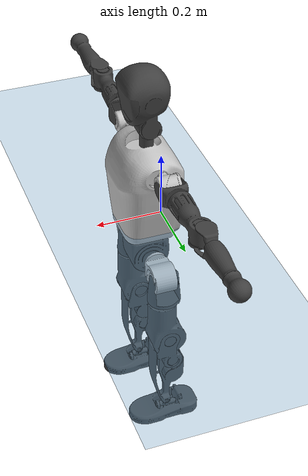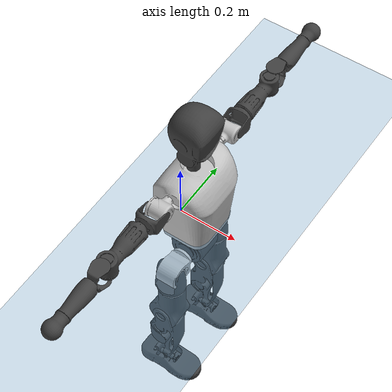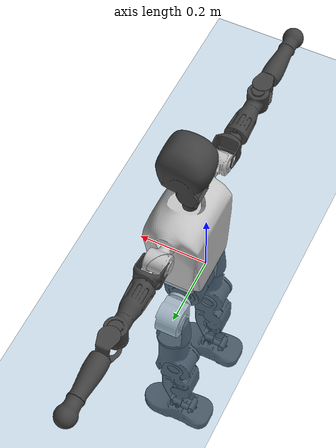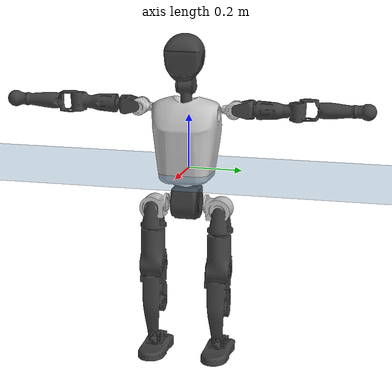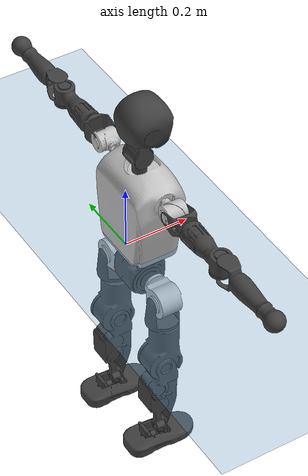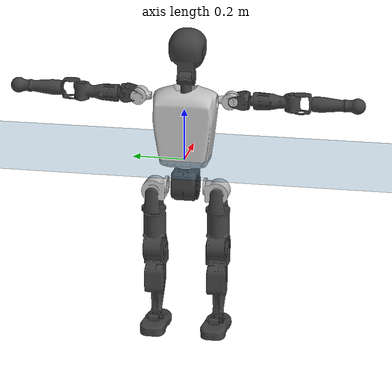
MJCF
<mujoco model="T1">
  <compiler angle="radian" assetdir="assets" balanceinertia="true" inertiafromgeom="false"/>

  <option timestep="0.005" density="1.2" viscosity="2e-05"/>

  <size nkey="1"/>

  <visual>
    <quality shadowsize="8192"/>
    <map shadowclip="0.5"/>
  </visual>

  <default>
    <default class="/">
      <joint armature="0.01" damping="0.01" frictionloss="0.1"/>
      <geom contype="0" conaffinity="0" group="1" solref="-1000 -80"/>
      <site size="0.01 0.005 0.005" group="5"/>
      <general forcelimited="true" biastype="affine" gainprm="25" biasprm="0 -25 -0.6"/>
      <default class="t1">
        <geom rgba="0.25 0.25 0.25 1"/>
        <default class="visual">
          <geom type="mesh" group="2"/>
        </default>
        <default class="collision">
          <geom group="3"/>
        </default>
        <default class="foot">
          <geom size="0.1115 0.05 0.015" type="box" condim="6" group="4" priority="1" solimp="0.015 1 0.015"/>
        </default>
        <default class="reward_collision_sphere">
          <geom group="5" rgba="1 0 0 1"/>
        </default>
      </default>
    </default>
  </default>

  <asset>
    <texture type="skybox" colorspace="auto" name="//unnamed_texture_0" builtin="gradient" rgb1="0.95 0.95 0.95" rgb2="0.95 0.95 0.95" width="100" height="600"/>
    <texture type="2d" colorspace="auto" name="texplane" builtin="checker" rgb1="0.345 0.575 0.748" rgb2="0.345 0.575 0.748" markrgb="1 1 1" width="512" height="512"/>
    <material name="MatPlane" class="/" texture="texplane" texuniform="true" texrepeat="2 2" specular="0.9"/>
    <mesh name="Trunk" class="/" file="Trunk.stl"/>
    <mesh name="H1" class="/" file="H1.stl"/>
    <mesh name="H2" class="/" file="H2.stl"/>
    <mesh name="AL1" class="/" file="AL1.stl"/>
    <mesh name="AL2" class="/" file="AL2.stl"/>
    <mesh name="AL3" class="/" file="AL3.stl"/>
    <mesh name="left_hand_link" class="/" file="left_hand_link.stl"/>
    <mesh name="AR1" class="/" file="AR1.stl"/>
    <mesh name="AR2" class="/" file="AR2.stl"/>
    <mesh name="AR3" class="/" file="AR3.stl"/>
    <mesh name="right_hand_link" class="/" file="right_hand_link.stl"/>
    <mesh name="Waist" class="/" file="Waist.stl"/>
    <mesh name="Hip_Pitch_Left" class="/" file="Hip_Pitch_Left.stl"/>
    <mesh name="Hip_Roll_Left" class="/" file="Hip_Roll_Left.stl"/>
    <mesh name="Hip_Yaw_Left" class="/" file="Hip_Yaw_Left.stl"/>
    <mesh name="Shank_Left" class="/" file="Shank_Left.stl"/>
    <mesh name="Ankle_Cross_Left" class="/" file="Ankle_Cross_Left.stl"/>
    <mesh name="left_foot_link" class="/" file="left_foot_link.stl"/>
    <mesh name="Hip_Pitch_Right" class="/" file="Hip_Pitch_Right.stl"/>
    <mesh name="Hip_Roll_Right" class="/" file="Hip_Roll_Right.stl"/>
    <mesh name="Hip_Yaw_Right" class="/" file="Hip_Yaw_Right.stl"/>
    <mesh name="Shank_Right" class="/" file="Shank_Right.stl"/>
    <mesh name="Ankle_Cross_Right" class="/" file="Ankle_Cross_Right.stl"/>
    <mesh name="right_foot_link" class="/" file="right_foot_link.stl"/>
  </asset>

  <worldbody>
    <geom name="floor" class="/" size="100 100 0.125" type="plane" group="0" material="MatPlane"/>
    <light name="toplight_shadow" class="/" pos="0 0 5" dir="0.0990148 0.0990148 -0.990148" type="directional" ambient="0.04 0.04 0.04" diffuse="0.55 0.55 0.55" specular="0.12 0.12 0.12"/>
    <light name="toplight_fill" class="/" pos="0 0 5" dir="0.0990148 0.0990148 -0.990148" type="directional" castshadow="false" ambient="0.04 0.04 0.04" diffuse="0.3 0.3 0.3" specular="0.08 0.08 0.08"/>
    <body name="trunk" childclass="t1" pos="0.000604886 0.00480397 -0.00184958" quat="0.999999 1.13417e-05 -0.00115415 -0.000102263">
      <inertial pos="0.0425045 -0.000826017 0.110683" quat="0.999905 0.00330391 -0.0104304 -0.0084408" mass="13.4757" diaginertia="0.0273384 0.191747 0.0760285"/>
      <joint name="//unnamed_joint_0" type="free" armature="0" damping="0" frictionloss="0"/>
      <geom name="//unnamed_geom_1" class="visual" rgba="0.76 0.76 0.76 1" mesh="Trunk"/>
      <geom name="//unnamed_geom_2" class="collision" size="0.0769179 0.102557 0.153836" pos="0.0473789 0 0.127414" type="box"/>
      <geom name="//unnamed_geom_3" class="reward_collision_sphere" size="0.117941" pos="0.0473789 0 0.106179"/>
      <geom name="//unnamed_geom_4" class="reward_collision_sphere" size="0.0153836" pos="0.0473789 0.104149 0"/>
      <geom name="//unnamed_geom_5" class="reward_collision_sphere" size="0.0153836" pos="0.0473789 -0.104149 0"/>
      <geom name="//unnamed_geom_6" class="reward_collision_sphere" size="0.0153836" pos="0.0473789 0.131105 0.191122"/>
      <geom name="//unnamed_geom_7" class="reward_collision_sphere" size="0.0153836" pos="0.0473789 -0.131105 0.191122"/>
      <site name="imu" pos="0.0143051 0.0310523 0.00916105" size="0.0102557"/>
      <camera name="track" pos="0 -2.45056 0" quat="0.707107 0.707107 0 0" mode="trackcom"/>
      <camera name="ego_camera" pos="0.0963371 0 0.44595" quat="-0.5 -0.5 0.5 0.5"/>
      <body name="H1" pos="0.0458864 -0.00290383 0.254775" quat="1 3.56356e-05 0.000325246 0.000827913">
        <inertial pos="-0.00243232 -0.000596718 0.0584866" quat="0.75451 -0.0502037 0.0183268 0.654109" mass="0.474348" diaginertia="7.71843e-05 0.000599893 0.000211861"/>
        <joint name="AAHead_yaw" pos="0 0 0" axis="0.00149929 -0.0314624 0.999504" range="-1.50885 1.61325" armature="0.0090454" damping="0.00926237" frictionloss="0.121191"/>
        <geom name="//unnamed_geom_8" class="visual" mesh="H1"/>
        <body name="H2" pos="-0.00567939 -0.00233155 0.0630791" quat="0.999999 0.000506867 7.0957e-05 -0.00103577">
          <inertial pos="0.00702911 0.00886081 0.104445" quat="0.987596 0.106126 -0.0779011 -0.0855766" mass="0.717267" diaginertia="0.000676155 0.00620817 0.00242155"/>
          <joint name="Head_pitch" pos="0 0 0" axis="0.0200802 -0.999739 0.0108713" stiffness="0.00251187" range="-1.26213 0.321364" armature="0.0111737" damping="0.000946686" frictionloss="0.103717"/>
          <geom name="//unnamed_geom_9" class="visual" mesh="H2"/>
          <geom name="//unnamed_geom_10" class="collision" size="0.0820457" pos="0.00789649 0 0.116797"/>
          <geom name="//unnamed_geom_11" class="reward_collision_sphere" size="0.0923015" pos="0.015793 0 0.106179"/>
        </body>
      </body>
      <body name="AL1" pos="0.0485558 0.132438 0.234639" quat="1 -0.000159161 0.000596526 0.000410026">
        <inertial pos="0.00128451 0.0556448 0.00745681" quat="0.532064 0.49556 -0.491077 0.479762" mass="0.50747" diaginertia="0.000364195 0.00307927 0.000341836"/>
        <joint name="Left_Shoulder_Pitch" pos="0 0 0" axis="0.00566281 0.999591 -0.0280284" range="-3.29484 1.2339" armature="0.00967349" damping="0" frictionloss="0.112942"/>
        <geom name="//unnamed_geom_12" class="visual" rgba="0.76 0.76 0.76 1" mesh="AL1"/>
        <body name="AL2" pos="0.00204562 0.0620083 0.00515457" quat="0.999989 0.00325427 -0.00272525 0.00184162">
          <inertial pos="0.0066091 0.0551011 -0.000132534" quat="0.49041 0.509794 -0.487316 0.511988" mass="0.17773" diaginertia="0.000121357 0.000980609 0.000244653"/>
          <joint name="Left_Shoulder_Roll" pos="0 0 0" axis="-0.999032 0.0108184 0.0426325" stiffness="0.0383167" range="-1.70587 1.72821" armature="0.010576" damping="0.0476041" frictionloss="0.0700966"/>
          <geom name="//unnamed_geom_13" class="visual" mesh="AL2"/>
          <body name="AL3" pos="-0.00294499 0.0658705 -0.00206931" quat="0.999994 0.00102174 -0.000488105 -0.00331798">
            <inertial pos="-0.00123574 0.109909 -0.000318703" quat="0.708939 0.705196 0.00137993 0.0101146" mass="0.998398" diaginertia="0.00410321 0.0335511 0.000941624"/>
            <joint name="Left_Elbow_Pitch" pos="0 0 0" axis="0.0100265 -0.999704 0.0221503" stiffness="0.0242315" range="-2.44472 2.42402" armature="0.00650529" damping="0.037866" frictionloss="0.0807998"/>
            <geom name="//unnamed_geom_14" class="visual" mesh="AL3"/>
            <geom name="//unnamed_geom_15" class="collision" size="0.0307672 0.0769179" pos="0 0.061264 0" quat="0.707105 0.707108 0 0" type="cylinder"/>
            <geom name="//unnamed_geom_16" class="reward_collision_sphere" size="0.0369206"/>
            <body name="left_hand_link" pos="-0.00121821 0.180911 0.0073062" quat="0.999999 0.000989388 -0.00122955 -0.000493729">
              <inertial pos="5.48667e-05 0.135532 0.0052863" quat="0.712248 0.701879 0.00793777 0.00245404" mass="0.342409" diaginertia="0.00245499 0.0218099 0.000293733"/>
              <joint name="Left_Elbow_Yaw" pos="0 0 0" axis="-0.00497004 -0.0114688 0.999922" range="-2.46071 0.0316969" armature="0.00980555" damping="0.0196833" frictionloss="0.0906638"/>
              <geom name="//unnamed_geom_17" class="visual" mesh="left_hand_link"/>
              <geom name="//unnamed_geom_18" class="collision" size="0.0307672 0.0897375" pos="0 0.159286 0" quat="0.707105 0.707108 0 0" type="cylinder"/>
              <geom name="//unnamed_geom_19" class="reward_collision_sphere" size="0.0512786"/>
              <geom name="//unnamed_geom_20" class="reward_collision_sphere" size="0.035895" pos="0 0.134781 0"/>
              <geom name="//unnamed_geom_21" class="reward_collision_sphere" size="0.035895" pos="0 0.263435 0"/>
            </body>
          </body>
        </body>
      </body>
      <body name="AR1" pos="0.0467467 -0.129776 0.232993" quat="1 -0.000318317 0.000478126 -0.000503655">
        <inertial pos="0.00116796 -0.048762 -0.00667956" quat="0.500894 0.491124 -0.505315 0.502553" mass="0.570671" diaginertia="0.000451209 0.00354296 0.000380713"/>
        <joint name="Right_Shoulder_Pitch" pos="0 0 0" axis="0.00380539 -0.99999 0.00219497" stiffness="0.00715235" range="-1.23897 3.30493" armature="0.0115645" damping="0.0110544" frictionloss="0.110012"/>
        <geom name="//unnamed_geom_22" class="visual" rgba="0.76 0.76 0.76 1" mesh="AR1"/>
        <body name="AR2" pos="-0.00275149 -0.0628159 0.00296366" quat="0.999999 -0.000742148 0.000621346 -0.000348505">
          <inertial pos="0.00448508 -0.0463143 0.00742571" quat="0.516175 0.489043 -0.50306 0.491254" mass="0.170568" diaginertia="0.000129641 0.00105013 0.000257671"/>
          <joint name="Right_Shoulder_Roll" pos="0 0 0" axis="-0.999784 -0.0153764 0.0139915" range="-1.74928 1.44915" armature="0.0100466" damping="0.0342005" frictionloss="0.0998157"/>
          <geom name="//unnamed_geom_23" class="visual" mesh="AR2"/>
          <body name="AR3" pos="-0.00405175 -0.0758089 0.00259432" quat="0.999999 -4.75539e-05 0.000822056 -0.000788156">
            <inertial pos="-6.94134e-05 -0.102596 -0.00168657" quat="0.707413 0.706798 0.00116532 0.00155173" mass="1.13102" diaginertia="0.00394571 0.0337328 0.000817891"/>
            <joint name="Right_Elbow_Pitch" pos="0 0 0" axis="-0.000354946 1 -8.12658e-05" stiffness="0.0133147" range="-2.26532 2.2769" armature="0.00671769" damping="0.00559958" frictionloss="0.136083"/>
            <geom name="//unnamed_geom_24" class="visual" mesh="AR3"/>
            <geom name="//unnamed_geom_25" class="collision" size="0.0307672 0.0769179" pos="0 -0.061264 0" quat="0.707105 0.707108 0 0" type="cylinder"/>
            <geom name="//unnamed_geom_26" class="reward_collision_sphere" size="0.0369206"/>
            <body name="right_hand_link" pos="0.000643798 -0.177409 -0.00178883" quat="0.999999 -0.00116584 0.000221947 -0.000221031">
              <inertial pos="-0.000755782 -0.136327 0.00884964" quat="0.729696 0.683499 -0.0137015 0.013574" mass="0.310741" diaginertia="0.00269491 0.0224785 0.000279685"/>
              <joint name="Right_Elbow_Yaw" pos="0 0 0" axis="0.012062 -6.17131e-05 0.999927" stiffness="0.0309967" range="0.133876 2.28358" armature="0.00967813" damping="0" frictionloss="0.106714"/>
              <geom name="//unnamed_geom_27" class="visual" mesh="right_hand_link"/>
              <geom name="//unnamed_geom_28" class="collision" size="0.0307672 0.0897375" pos="0 -0.159286 0" quat="0.707105 0.707108 0 0" type="cylinder"/>
              <geom name="//unnamed_geom_29" class="reward_collision_sphere" size="0.0512786"/>
              <geom name="//unnamed_geom_30" class="reward_collision_sphere" size="0.035895" pos="0 -0.134781 0"/>
              <geom name="//unnamed_geom_31" class="reward_collision_sphere" size="0.035895" pos="0 -0.263435 0"/>
            </body>
          </body>
        </body>
      </body>
      <body name="Waist" pos="0.0478668 -0.000619158 -0.120506" quat="1 -0.000180146 0.000115741 1.4613e-05">
        <inertial pos="0.00456781 0.00103707 0.00611818" quat="0.983797 0.00735411 -0.179108 -0.00297429" mass="2.86977" diaginertia="0.00174004 0.0141749 0.00635507"/>
        <joint name="Waist" pos="0 0 0" axis="0.0278749 -0.0106558 0.999555" stiffness="0.0447122" range="-1.58183 1.52619" armature="0.0100561" damping="0" frictionloss="0.130308"/>
        <geom name="//unnamed_geom_32" class="visual" mesh="Waist"/>
        <body name="Hip_Pitch_Left" pos="-0.00528823 0.123578 0.000196554" quat="1 -3.99597e-05 -1.13135e-05 8.51511e-05">
          <inertial pos="-0.00695288 -0.0102693 -0.0131269" quat="0.969709 0.239615 0.0430994 0.0198071" mass="1.06103" diaginertia="0.000571973 0.0041107 0.00169363"/>
          <joint name="Left_Hip_Pitch" pos="0 0 0" axis="0.00453793 0.99999 -0.00052567" range="-1.80498 1.4409" armature="0.00906012" damping="0.0319555" frictionloss="0.0933868"/>
          <geom name="//unnamed_geom_33" class="visual" rgba="0.76 0.76 0.76 1" mesh="Hip_Pitch_Left"/>
          <body name="Hip_Roll_Left" pos="-0.00463256 0.00138434 -0.0276769" quat="1 5.5355e-05 -0.000426398 -6.88087e-05">
            <inertial pos="0.00407472 -0.00499511 -0.0584137" quat="0.708652 0.00936749 0.00431016 0.705483" mass="0.465688" diaginertia="0.000537862 0.00493614 0.000770285"/>
            <joint name="Left_Hip_Roll" pos="0 0 0" axis="-0.999992 0.00257385 -0.00290657" range="-1.5966 0.18021" armature="0.0112966" damping="0.015355" frictionloss="0.121567"/>
            <geom name="//unnamed_geom_34" class="visual" mesh="Hip_Roll_Left"/>
            <geom name="//unnamed_geom_35" class="reward_collision_sphere" size="0.0564064"/>
            <body name="Hip_Yaw_Left" pos="0.000672405 -0.00436632 -0.0912967" quat="1 0.000503119 -0.000743227 -0.000338729">
              <inertial pos="-0.00610069 -0.0012209 -0.0968208" quat="0.672897 -0.0519018 -0.0326834 0.737189" mass="2.52076" diaginertia="0.00811473 0.0728107 0.00356805"/>
              <joint name="Left_Hip_Yaw" pos="0 0 0" axis="-0.0263946 -0.0206196 -0.999439" range="-1.03927 1.09414" armature="0.00914417" damping="5.64699e-06" frictionloss="0.109476"/>
              <geom name="//unnamed_geom_36" class="visual" mesh="Hip_Yaw_Left"/>
              <geom name="//unnamed_geom_37" class="collision" size="0.0512786 0.0820457" type="cylinder"/>
              <body name="Shank_Left" pos="-0.0151746 -0.00624336 -0.13659" quat="0.999999 0.00119788 0.000824189 9.36476e-05">
                <inertial pos="-0.00306296 0.00812833 -0.131771" quat="0.997985 0.00286204 -0.0144539 0.0617139" mass="1.81865" diaginertia="0.00929444 0.095305 0.0021945"/>
                <joint name="Left_Knee_Pitch" pos="0 0 0" axis="-0.00133191 0.999951 0.00981337" range="-0.0370325 2.32521" armature="0.0104768" damping="0.000197107" frictionloss="0.0553679"/>
                <geom name="//unnamed_geom_38" class="visual" mesh="Shank_Left"/>
                <geom name="//unnamed_geom_39" class="collision" size="0.0512786 0.0769179" pos="0 0 -0.127414" type="cylinder"/>
                <geom name="//unnamed_geom_40" class="reward_collision_sphere" size="0.0666622"/>
                <body name="Ankle_Cross_Left" pos="0.000223032 0.00159515 -0.294347" quat="1 5.27788e-05 8.25324e-05 -0.000347117">
                  <inertial pos="-0.00464187 -0.0017657 -0.0108102" quat="0.438679 0.549813 0.549807 0.450531" mass="0.0913027" diaginertia="9.32589e-06 8.66721e-05 1.65628e-05"/>
                  <joint name="Left_Ankle_Pitch" pos="0 0 0" axis="-0.021319 0.999201 -0.0337921" stiffness="0.0373413" range="-0.86983 0.324862" armature="0.0103341" damping="0.00375516" frictionloss="0.109182"/>
                  <geom name="//unnamed_geom_41" class="visual" mesh="Ankle_Cross_Left"/>
                  <body name="left_foot_link" pos="-0.00315558 -0.00198435 -0.0130736" quat="0.999992 -0.00161981 0.00262323 0.00256078">
                    <inertial pos="-0.00708559 0.00155755 -0.00917838" quat="0.00606704 0.626279 -0.0230244 0.779236" mass="0.708175" diaginertia="0.000818917 0.00647597 0.00306793"/>
                    <joint name="Left_Ankle_Roll" pos="0 0 0" axis="-0.999944 -0.00783315 -0.00709537" range="-0.455994 0.479887" armature="0.0101556" damping="0.0242928" frictionloss="0.10154"/>
                    <geom name="//unnamed_geom_42" class="visual" mesh="left_foot_link"/>
                    <geom name="left_foot" class="foot" size="0.0945948 0.0521621 0.0206018" pos="0.00789649 0 -0.0159268"/>
                    <geom name="//unnamed_geom_44" class="reward_collision_sphere" size="0.0533297" pos="0.00789649 0 -0.0159268"/>
                    <geom name="//unnamed_geom_45" class="reward_collision_sphere" size="0.0307672" pos="0.0750166 -0.0281814 -0.0159268"/>
                    <geom name="//unnamed_geom_46" class="reward_collision_sphere" size="0.0307672" pos="-0.0552754 -0.0281814 -0.0159268"/>
                    <site name="left_foot" class="foot" pos="0.00789649 0 -0.0159268" size="0.0102557"/>
                  </body>
                </body>
              </body>
            </body>
          </body>
        </body>
        <body name="Hip_Pitch_Right" pos="0.00460153 -0.127241 -0.000809908" quat="0.999999 0.000524577 0.00132728 -0.000839113">
          <inertial pos="0.00272492 0.00859133 -0.0241375" quat="0.974506 -0.223217 0.0193682 -0.0117293" mass="1.05457" diaginertia="0.000546213 0.00382388 0.00158358"/>
          <joint name="Right_Hip_Pitch" pos="0 0 0" axis="0.00665979 -0.999954 -0.00687375" stiffness="0.00535856" range="-1.57564 1.74595" armature="0.00913249" damping="0.0233264" frictionloss="0.0827778"/>
          <geom name="//unnamed_geom_47" class="visual" rgba="0.76 0.76 0.76 1" mesh="Hip_Pitch_Right"/>
          <body name="Hip_Roll_Right" pos="-0.00574562 -0.000738465 -0.0201042" quat="1 -7.16447e-05 -4.31638e-05 -0.000267573">
            <inertial pos="0.00683508 0.00180055 -0.0524397" quat="0.712049 -0.00735444 -0.0101104 0.702018" mass="0.376418" diaginertia="0.000536977 0.00407743 0.000683391"/>
            <joint name="Right_Hip_Roll" pos="0 0 0" axis="-0.999999 -0.000430764 0.00156005" range="-0.151829 1.52985" armature="0.00922298" damping="0.00337867" frictionloss="0.111455"/>
            <geom name="//unnamed_geom_48" class="visual" mesh="Hip_Roll_Right"/>
            <geom name="//unnamed_geom_49" class="reward_collision_sphere" size="0.0564064"/>
            <body name="Hip_Yaw_Right" pos="0.00256139 -0.00182157 -0.0861501" quat="0.999999 -0.000493568 -0.000534155 -0.000820792">
              <inertial pos="-0.00499787 0.00586236 -0.102259" quat="0.711521 -0.0385526 -0.0362903 0.700668" mass="2.13581" diaginertia="0.00767661 0.060495 0.00343431"/>
              <joint name="Right_Hip_Yaw" pos="0 0 0" axis="0.00319236 0.00115085 -0.999994" range="-1.06121 1.01123" armature="0.0142677" damping="0.0135184" frictionloss="0.0939253"/>
              <geom name="//unnamed_geom_50" class="visual" mesh="Hip_Yaw_Right"/>
              <geom name="//unnamed_geom_51" class="collision" size="0.0512786 0.0820457" type="cylinder"/>
              <body name="Shank_Right" pos="-0.0179484 -0.000862331 -0.141906" quat="1 6.66219e-05 8.93167e-06 -5.41814e-06">
                <inertial pos="-0.0127121 -0.00921451 -0.130219" quat="0.998606 -0.0170939 -0.0326345 -0.0378126" mass="1.74054" diaginertia="0.00861672 0.0871186 0.00245333"/>
                <joint name="Right_Knee_Pitch" pos="0 0 0" axis="0.0364561 -0.999331 -0.0030737" range="-2.33132 0.00318319" armature="0.0107336" damping="0.00600347" frictionloss="0.0958126"/>
                <geom name="//unnamed_geom_52" class="visual" mesh="Shank_Right"/>
                <geom name="//unnamed_geom_53" class="collision" size="0.0512786 0.0769179" pos="0 0 -0.127414" type="cylinder"/>
                <geom name="//unnamed_geom_54" class="reward_collision_sphere" size="0.0666622"/>
                <body name="Ankle_Cross_Right" pos="-0.00213963 0.000383496 -0.297132" quat="1 0.000199148 0.000360657 -7.74773e-05">
                  <inertial pos="-0.00300158 -0.00215629 -0.00868639" quat="0.441086 0.556838 0.545707 0.444498" mass="0.0828045" diaginertia="8.42504e-06 7.13125e-05 1.56982e-05"/>
                  <joint name="Right_Ankle_Pitch" pos="0 0 0" axis="-0.0198141 -0.99897 -0.0408292" range="-0.353232 0.905293" armature="0.0108328" damping="0.00843642" frictionloss="0.105091"/>
                  <geom name="//unnamed_geom_55" class="visual" mesh="Ankle_Cross_Right"/>
                  <body name="right_foot_link" pos="1.93827e-06 0.00493916 -0.0172892" quat="1 -0.000375188 0.000403001 0.000788301">
                    <inertial pos="-0.00797994 -0.00115744 -0.0126896" quat="-0.0140665 0.627928 0.013785 0.778023" mass="0.754123" diaginertia="0.00073284 0.00637486 0.00298839"/>
                    <joint name="Right_Ankle_Roll" pos="0 0 0" axis="-0.999685 0.00755634 -0.0239317" range="-0.448819 0.44423" armature="0.0101351" damping="0" frictionloss="0.13831"/>
                    <geom name="//unnamed_geom_56" class="visual" mesh="right_foot_link"/>
                    <geom name="right_foot" class="foot" size="0.0974119 0.0495268 0.01702" pos="0.00789649 0 -0.0159268"/>
                    <geom name="//unnamed_geom_58" class="reward_collision_sphere" size="0.0410229"/>
                    <geom name="//unnamed_geom_59" class="reward_collision_sphere" size="0.0307672" pos="0.00789649 0 -0.0159268"/>
                    <geom name="//unnamed_geom_60" class="reward_collision_sphere" size="0.0307672" pos="0.0750166 0.0281814 -0.0159268"/>
                    <geom name="//unnamed_geom_61" class="reward_collision_sphere" size="0.0307672" pos="-0.0552754 0.0281814 -0.0159268"/>
                    <site name="right_foot" class="foot" pos="0.00789649 0 -0.0159268" size="0.0102557"/>
                  </body>
                </body>
              </body>
            </body>
          </body>
        </body>
      </body>
    </body>
  </worldbody>

  <contact>
    <pair class="/" geom1="floor" geom2="left_foot" name="//unnamed_contact_0"/>
    <pair class="/" geom1="floor" geom2="right_foot" name="//unnamed_contact_1"/>
  </contact>

  <actuator>
    <general name="AAHead_yaw" class="/" joint="AAHead_yaw" forcerange="-8.81761 8.81761" gainprm="24.767" biasprm="0 -24.767 -0.66147"/>
    <general name="Head_pitch" class="/" joint="Head_pitch" forcerange="-7.1372 7.1372" gainprm="24.767" biasprm="0 -24.767 -0.66147"/>
    <general name="Left_Shoulder_Pitch" class="/" joint="Left_Shoulder_Pitch" forcerange="-19.2515 19.2515" gainprm="24.767" biasprm="0 -24.767 -0.66147"/>
    <general name="Left_Shoulder_Roll" class="/" joint="Left_Shoulder_Roll" forcerange="-17.8656 17.8656" gainprm="24.767" biasprm="0 -24.767 -0.66147"/>
    <general name="Left_Elbow_Pitch" class="/" joint="Left_Elbow_Pitch" forcerange="-15.3461 15.3461" gainprm="24.767" biasprm="0 -24.767 -0.66147"/>
    <general name="Left_Elbow_Yaw" class="/" joint="Left_Elbow_Yaw" forcerange="-12.8898 12.8898" gainprm="24.767" biasprm="0 -24.767 -0.66147"/>
    <general name="Right_Shoulder_Pitch" class="/" joint="Right_Shoulder_Pitch" forcerange="-18.2359 18.2359" gainprm="24.767" biasprm="0 -24.767 -0.66147"/>
    <general name="Right_Shoulder_Roll" class="/" joint="Right_Shoulder_Roll" forcerange="-15.2909 15.2909" gainprm="24.767" biasprm="0 -24.767 -0.66147"/>
    <general name="Right_Elbow_Pitch" class="/" joint="Right_Elbow_Pitch" forcerange="-16.646 16.646" gainprm="24.767" biasprm="0 -24.767 -0.66147"/>
    <general name="Right_Elbow_Yaw" class="/" joint="Right_Elbow_Yaw" forcerange="-21.2311 21.2311" gainprm="24.767" biasprm="0 -24.767 -0.66147"/>
    <general name="Waist" class="/" joint="Waist" forcerange="-31.0983 31.0983" gainprm="24.767" biasprm="0 -24.767 -0.66147"/>
    <general name="Left_Hip_Pitch" class="/" joint="Left_Hip_Pitch" forcerange="-42.08 42.08" gainprm="24.767" biasprm="0 -24.767 -0.66147"/>
    <general name="Left_Hip_Roll" class="/" joint="Left_Hip_Roll" forcerange="-28.5723 28.5723" gainprm="24.767" biasprm="0 -24.767 -0.66147"/>
    <general name="Left_Hip_Yaw" class="/" joint="Left_Hip_Yaw" forcerange="-31.2924 31.2924" gainprm="24.767" biasprm="0 -24.767 -0.66147"/>
    <general name="Left_Knee_Pitch" class="/" joint="Left_Knee_Pitch" forcerange="-61.8965 61.8965" gainprm="24.767" biasprm="0 -24.767 -0.66147"/>
    <general name="Left_Ankle_Pitch" class="/" joint="Left_Ankle_Pitch" forcerange="-21.2496 21.2496" gainprm="24.767" biasprm="0 -24.767 -0.66147"/>
    <general name="Left_Ankle_Roll" class="/" joint="Left_Ankle_Roll" forcerange="-15.2025 15.2025" gainprm="24.767" biasprm="0 -24.767 -0.66147"/>
    <general name="Right_Hip_Pitch" class="/" joint="Right_Hip_Pitch" forcerange="-42.6104 42.6104" gainprm="24.767" biasprm="0 -24.767 -0.66147"/>
    <general name="Right_Hip_Roll" class="/" joint="Right_Hip_Roll" forcerange="-31.1957 31.1957" gainprm="24.767" biasprm="0 -24.767 -0.66147"/>
    <general name="Right_Hip_Yaw" class="/" joint="Right_Hip_Yaw" forcerange="-33.2448 33.2448" gainprm="24.767" biasprm="0 -24.767 -0.66147"/>
    <general name="Right_Knee_Pitch" class="/" joint="Right_Knee_Pitch" forcerange="-64.7739 64.7739" gainprm="24.767" biasprm="0 -24.767 -0.66147"/>
    <general name="Right_Ankle_Pitch" class="/" joint="Right_Ankle_Pitch" forcerange="-23.9382 23.9382" gainprm="24.767" biasprm="0 -24.767 -0.66147"/>
    <general name="Right_Ankle_Roll" class="/" joint="Right_Ankle_Roll" forcerange="-13.9473 13.9473" gainprm="24.767" biasprm="0 -24.767 -0.66147"/>
  </actuator>

  <sensor>
    <gyro site="imu" name="imu_angular_velocity"/>
    <velocimeter site="imu" name="imu_linear_velocity"/>
    <framelinvel objtype="site" objname="left_foot" name="left_foot_global_linear_velocity"/>
    <framelinvel objtype="site" objname="right_foot" name="right_foot_global_linear_velocity"/>
  </sensor>

  <keyframe>
    <key name="home" qpos="0 0 0.6385 1 0 0 0 0 0 0 1.4 0 -0.4 0 -1.4 0 0.4 0 -0.4 0 0 0.8 -0.4 0 0.4 0 0 -0.8 0.4 0"/>
  </keyframe>
</mujoco>
